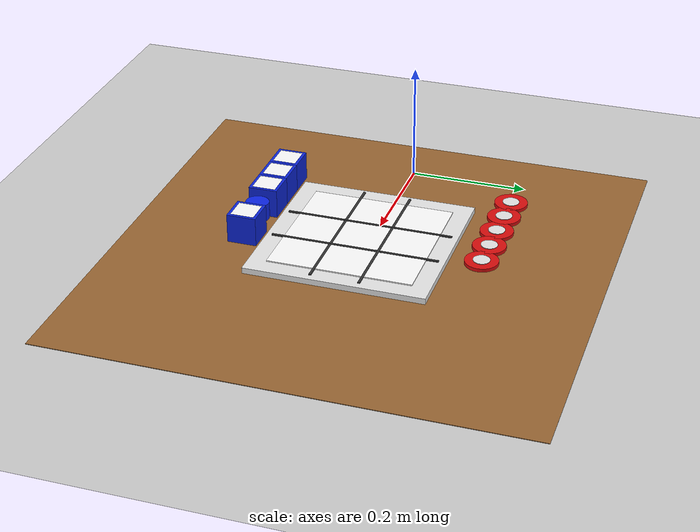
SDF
<?xml version="1.0" ?>
<sdf version="1.8">
  <world name="tictactoe_world">

    <plugin filename="gz-sim-physics-system" name="gz::sim::systems::Physics"></plugin>
    <plugin filename="gz-sim-user-commands-system" name="gz::sim::systems::UserCommands"></plugin>
    <plugin filename="gz-sim-scene-broadcaster-system" name="gz::sim::systems::SceneBroadcaster"></plugin>
    <plugin filename="gz-sim-contact-system" name="gz::sim::systems::Contact"></plugin>
    <plugin filename="gz-sim-sensors-system" name="gz::sim::systems::Sensors">
      <render_engine>ogre2</render_engine>
    </plugin>

    <gui fullscreen="false">
      <camera name="user_camera">
        <pose>0.80 0 0.45 0 0.6 3.14159</pose>
      </camera>
    </gui>

    <light name="sun" type="directional">
      <pose>0 0 10 0 0 0</pose>
      <cast_shadows>true</cast_shadows>
      <diffuse>0.8 0.8 0.8 1</diffuse>
      <specular>0.2 0.2 0.2 1</specular>
      <direction>-0.5 0.1 -0.9</direction>
    </light>

    <model name="ground_plane">
      <static>true</static>
      <link name="link">
        <collision name="collision">
          <geometry>
            <plane>
              <normal>0 0 1</normal>
              <size>100 100</size>
            </plane>
          </geometry>
        </collision>
        <visual name="visual">
          <geometry>
            <plane>
              <normal>0 0 1</normal>
              <size>100 100</size>
            </plane>
          </geometry>
          <material>
            <ambient>0.8 0.8 0.8 1</ambient>
            <diffuse>0.8 0.8 0.8 1</diffuse>
            <specular>0.8 0.8 0.8 1</specular>
          </material>
        </visual>
      </link>
    </model>

    <model name="tictactoe_table">
      <static>true</static>
      <pose>0.3 0.0 -0.025 0 0 0</pose>
      <link name="link">
        <collision name="collision">
          <geometry>
            <box>
              <size>0.8 0.8 0.05</size>
            </box>
          </geometry>
        </collision>
        <visual name="visual">
          <geometry>
            <box>
              <size>0.8 0.8 0.05</size>
            </box>
          </geometry>
          <material>
            <ambient>0.6 0.4 0.2 1</ambient>
            <diffuse>0.6 0.4 0.2 1</diffuse>
          </material>
        </visual>
      </link>
    </model>

    <model name="tictactoe_board">
      <static>true</static>
      <pose>0.3 0.0 0.03 0 0 0</pose>

      <link name="base_link">
        <collision name="collision">
          <geometry>
            <box>
              <size>0.3 0.3 0.01</size>
            </box>
          </geometry>
        </collision>
        <visual name="visual">
          <geometry>
            <box>
              <size>0.3 0.3 0.01</size>
            </box>
          </geometry>
          <material>
            <ambient>0.9 0.9 0.9 1</ambient>
            <diffuse>0.9 0.9 0.9 1</diffuse>
          </material>
        </visual>
      </link>

      <link name="cell_0_0">
        <pose>-0.08 0.08 0.006 0 0 0</pose>
        <visual name="visual">
          <geometry><box><size>0.08 0.08 0.002</size></box></geometry>
          <material>
            <ambient>1 1 1 1</ambient>
            <diffuse>1 1 1 1</diffuse>
            <pbr>
              <metal>
                <albedo_map>model://project2/models/textures/aruco_0.png</albedo_map>
                <roughness>1.0</roughness>
                <metalness>0.0</metalness>
              </metal>
            </pbr>
          </material>
        </visual>
      </link>

      <link name="cell_0_1">
        <pose>0 0.08 0.006 0 0 0</pose>
        <visual name="visual">
          <geometry><box><size>0.08 0.08 0.002</size></box></geometry>
          <material>
            <ambient>1 1 1 1</ambient>
            <diffuse>1 1 1 1</diffuse>
            <pbr>
              <metal>
                <albedo_map>model://project2/models/textures/aruco_1.png</albedo_map>
                <roughness>1.0</roughness>
                <metalness>0.0</metalness>
              </metal>
            </pbr>
          </material>
        </visual>
      </link>

      <link name="cell_0_2">
        <pose>0.08 0.08 0.006 0 0 0</pose>
        <visual name="visual">
          <geometry><box><size>0.08 0.08 0.002</size></box></geometry>
          <material>
            <ambient>1 1 1 1</ambient>
            <diffuse>1 1 1 1</diffuse>
            <pbr>
              <metal>
                <albedo_map>model://project2/models/textures/aruco_2.png</albedo_map>
                <roughness>1.0</roughness>
                <metalness>0.0</metalness>
              </metal>
            </pbr>
          </material>
        </visual>
      </link>

      <link name="cell_1_0">
        <pose>-0.08 0 0.006 0 0 0</pose>
        <visual name="visual">
          <geometry><box><size>0.08 0.08 0.002</size></box></geometry>
          <material>
            <ambient>1 1 1 1</ambient>
            <diffuse>1 1 1 1</diffuse>
            <pbr>
              <metal>
                <albedo_map>model://project2/models/textures/aruco_3.png</albedo_map>
                <roughness>1.0</roughness>
                <metalness>0.0</metalness>
              </metal>
            </pbr>
          </material>
        </visual>
      </link>

      <link name="cell_1_1">
        <pose>0 0 0.006 0 0 0</pose>
        <visual name="visual">
          <geometry><box><size>0.08 0.08 0.002</size></box></geometry>
          <material>
            <ambient>1 1 1 1</ambient>
            <diffuse>1 1 1 1</diffuse>
            <pbr>
              <metal>
                <albedo_map>model://project2/models/textures/aruco_4.png</albedo_map>
                <roughness>1.0</roughness>
                <metalness>0.0</metalness>
              </metal>
            </pbr>
          </material>
        </visual>
      </link>

      <link name="cell_1_2">
        <pose>0.08 0 0.006 0 0 0</pose>
        <visual name="visual">
          <geometry><box><size>0.08 0.08 0.002</size></box></geometry>
          <material>
            <ambient>1 1 1 1</ambient>
            <diffuse>1 1 1 1</diffuse>
            <pbr>
              <metal>
                <albedo_map>model://project2/models/textures/aruco_5.png</albedo_map>
                <roughness>1.0</roughness>
                <metalness>0.0</metalness>
              </metal>
            </pbr>
          </material>
        </visual>
      </link>

      <link name="cell_2_0">
        <pose>-0.08 -0.08 0.006 0 0 0</pose>
        <visual name="visual">
          <geometry><box><size>0.08 0.08 0.002</size></box></geometry>
          <material>
            <ambient>1 1 1 1</ambient>
            <diffuse>1 1 1 1</diffuse>
            <pbr>
              <metal>
                <albedo_map>model://project2/models/textures/aruco_6.png</albedo_map>
                <roughness>1.0</roughness>
                <metalness>0.0</metalness>
              </metal>
            </pbr>
          </material>
        </visual>
      </link>

      <link name="cell_2_1">
        <pose>0 -0.08 0.006 0 0 0</pose>
        <visual name="visual">
          <geometry><box><size>0.08 0.08 0.002</size></box></geometry>
          <material>
            <ambient>1 1 1 1</ambient>
            <diffuse>1 1 1 1</diffuse>
            <pbr>
              <metal>
                <albedo_map>model://project2/models/textures/aruco_7.png</albedo_map>
                <roughness>1.0</roughness>
                <metalness>0.0</metalness>
              </metal>
            </pbr>
          </material>
        </visual>
      </link>

      <link name="cell_2_2">
        <pose>0.08 -0.08 0.006 0 0 0</pose>
        <visual name="visual">
          <geometry><box><size>0.08 0.08 0.002</size></box></geometry>
          <material>
            <ambient>1 1 1 1</ambient>
            <diffuse>1 1 1 1</diffuse>
            <pbr>
              <metal>
                <albedo_map>model://project2/models/textures/aruco_8.png</albedo_map>
                <roughness>1.0</roughness>
                <metalness>0.0</metalness>
              </metal>
            </pbr>
          </material>
        </visual>
      </link>

      <link name="v_line_1">
        <pose>-0.04 0 0.007 0 0 0</pose>
        <visual name="visual">
          <geometry><box><size>0.004 0.28 0.002</size></box></geometry>
          <material><ambient>0.2 0.2 0.2 1</ambient><diffuse>0.2 0.2 0.2 1</diffuse></material>
        </visual>
      </link>

      <link name="v_line_2">
        <pose>0.04 0 0.007 0 0 0</pose>
        <visual name="visual">
          <geometry><box><size>0.004 0.28 0.002</size></box></geometry>
          <material><ambient>0.2 0.2 0.2 1</ambient><diffuse>0.2 0.2 0.2 1</diffuse></material>
        </visual>
      </link>

      <link name="h_line_1">
        <pose>0 -0.04 0.007 0 0 0</pose>
        <visual name="visual">
          <geometry><box><size>0.28 0.004 0.002</size></box></geometry>
          <material><ambient>0.2 0.2 0.2 1</ambient><diffuse>0.2 0.2 0.2 1</diffuse></material>
        </visual>
      </link>

      <link name="h_line_2">
        <pose>0 0.04 0.007 0 0 0</pose>
        <visual name="visual">
          <geometry><box><size>0.28 0.004 0.002</size></box></geometry>
          <material><ambient>0.2 0.2 0.2 1</ambient><diffuse>0.2 0.2 0.2 1</diffuse></material>
        </visual>
      </link>
    </model>

    <!-- Robot pieces are arranged along the near supply line. -->
    <include>
      <uri>model://aruco_cube_6</uri>
      <name>robot_cube_6</name>
      <pose>0.10 -0.20 0.025 0 0 0</pose>
    </include>
    <include>
      <uri>model://aruco_cube_7</uri>
      <name>robot_cube_7</name>
      <pose>0.15 -0.20 0.025 0 0 0</pose>
    </include>
    <include>
      <uri>model://aruco_cube_8</uri>
      <name>robot_cube_8</name>
      <pose>0.20 -0.20 0.025 0 0 0</pose>
    </include>
    <include>
      <uri>model://aruco_cube_9</uri>
      <name>robot_cube_9</name>
      <pose>0.25 -0.20 0.025 0 0 0</pose>
    </include>
    <include>
      <uri>model://aruco_cube_10</uri>
      <name>robot_cube_10</name>
      <pose>0.30 -0.20 0.025 0 0 0</pose>
    </include>

    <include>
      <uri>model://human_marker_o</uri>
      <name>human_marker_0</name>
      <pose>0.10 0.20 0.025 0 0 0</pose>
    </include>
    <include>
      <uri>model://human_marker_o</uri>
      <name>human_marker_1</name>
      <pose>0.15 0.20 0.025 0 0 0</pose>
    </include>
    <include>
      <uri>model://human_marker_o</uri>
      <name>human_marker_2</name>
      <pose>0.20 0.20 0.025 0 0 0</pose>
    </include>
    <include>
      <uri>model://human_marker_o</uri>
      <name>human_marker_3</name>
      <pose>0.25 0.20 0.025 0 0 0</pose>
    </include>
    <include>
      <uri>model://human_marker_o</uri>
      <name>human_marker_4</name>
      <pose>0.30 0.20 0.025 0 0 0</pose>
    </include>
  </world>
</sdf>

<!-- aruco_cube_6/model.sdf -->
<sdf version='1.10'>
  <model name='aruco_cube_6'>
    <link name="cube_link">
        <collision name="cube_collision">
            <geometry>
                <box>
                <size>0.05 0.05 0.05</size>
                </box>
            </geometry>

            <surface>
                <friction>
                <ode>
                    <mu>15</mu>
                    <mu2>15</mu2>
                </ode>
                </friction>
            </surface>
        </collision>

        <inertial>
            <mass>0.05</mass>
            <inertia>
                <ixx>0.000018</ixx>
                <iyy>0.000018</iyy>
                <izz>0.000018</izz>
                <ixy>0</ixy>
                <ixz>0</ixz>
                <iyz>0</iyz>
            </inertia>
        </inertial>

        <visual name="cube_visual">
            <geometry>
                <box>
                <size>0.05 0.05 0.05</size>
                </box>
            </geometry>
            <material>
                <ambient>0.05 0.15 0.85 1</ambient>
                <diffuse>0.05 0.15 0.85 1</diffuse>
                <specular>0.2 0.2 0.2 1</specular>
            </material>
        </visual>

        <visual name="aruco_top_visual">
            <pose>0 0 0.0251 0 0 0</pose>
            <geometry>
                <box>
                    <size>0.04 0.04 0.0001</size>
                </box>
            </geometry>
            <material>
                <ambient>1 1 1 1</ambient>
                <diffuse>1 1 1 1</diffuse>
                <pbr>
                    <metal>
                        <albedo_map>
                            material/textures/aruco_6.png

                        </albedo_map>
                        <roughness>1.0</roughness>
                        <metalness>0.0</metalness>
                    </metal>
                </pbr>
            </material>
        </visual>

    </link>
  </model>
</sdf>

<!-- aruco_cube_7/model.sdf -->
<sdf version='1.10'>
  <model name='aruco_cube_7'>
    <link name="cube_link">
        <collision name="cube_collision">
            <geometry>
                <box>
                <size>0.05 0.05 0.05</size>
                </box>
            </geometry>

            <surface>
                <friction>
                <ode>
                    <mu>15</mu>
                    <mu2>15</mu2>
                </ode>
                </friction>
            </surface>
        </collision>

        <inertial>
            <mass>0.05</mass>
            <inertia>
                <ixx>0.000018</ixx>
                <iyy>0.000018</iyy>
                <izz>0.000018</izz>
                <ixy>0</ixy>
                <ixz>0</ixz>
                <iyz>0</iyz>
            </inertia>
        </inertial>

        <visual name="cube_visual">
            <geometry>
                <box>
                <size>0.05 0.05 0.05</size>
                </box>
            </geometry>
            <material>
                <ambient>0.05 0.15 0.85 1</ambient>
                <diffuse>0.05 0.15 0.85 1</diffuse>
                <specular>0.2 0.2 0.2 1</specular>
            </material>
        </visual>

        <visual name="aruco_top_visual">
            <pose>0 0 0.0251 0 0 0</pose>
            <geometry>
                <box>
                    <size>0.04 0.04 0.0001</size>
                </box>
            </geometry>
            <material>
                <ambient>1 1 1 1</ambient>
                <diffuse>1 1 1 1</diffuse>
                <pbr>
                    <metal>
                        <albedo_map>
                            material/textures/aruco_7.png

                        </albedo_map>
                        <roughness>1.0</roughness>
                        <metalness>0.0</metalness>
                    </metal>
                </pbr>
            </material>
        </visual>

    </link>
  </model>
</sdf>

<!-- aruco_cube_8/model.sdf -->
<sdf version='1.10'>
  <model name='aruco_cube_8'>
    <link name="cube_link">
        <collision name="cube_collision">
            <geometry>
                <box>
                <size>0.05 0.05 0.05</size>
                </box>
            </geometry>

            <surface>
                <friction>
                <ode>
                    <mu>15</mu>
                    <mu2>15</mu2>
                </ode>
                </friction>
            </surface>
        </collision>

        <inertial>
            <mass>0.05</mass>
            <inertia>
                <ixx>0.000018</ixx>
                <iyy>0.000018</iyy>
                <izz>0.000018</izz>
                <ixy>0</ixy>
                <ixz>0</ixz>
                <iyz>0</iyz>
            </inertia>
        </inertial>

        <visual name="cube_visual">
            <geometry>
                <box>
                <size>0.05 0.05 0.05</size>
                </box>
            </geometry>
            <material>
                <ambient>0.05 0.15 0.85 1</ambient>
                <diffuse>0.05 0.15 0.85 1</diffuse>
                <specular>0.2 0.2 0.2 1</specular>
            </material>
        </visual>

        <visual name="aruco_top_visual">
            <pose>0 0 0.0251 0 0 0</pose>
            <geometry>
                <box>
                    <size>0.04 0.04 0.0001</size>
                </box>
            </geometry>
            <material>
                <ambient>1 1 1 1</ambient>
                <diffuse>1 1 1 1</diffuse>
                <pbr>
                    <metal>
                        <albedo_map>
                            material/textures/aruco_8.png

                        </albedo_map>
                        <roughness>1.0</roughness>
                        <metalness>0.0</metalness>
                    </metal>
                </pbr>
            </material>
        </visual>

    </link>
  </model>
</sdf>

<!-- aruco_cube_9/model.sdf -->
<sdf version='1.10'>
  <model name='aruco_cube_9'>
    <link name="cube_link">
        <collision name="cube_collision">
            <geometry>
                <cylinder>
                    <radius>0.02</radius>
                    <length>0.03</length>
                </cylinder>
            </geometry>
            <surface>
                <friction>
                <ode>
                    <mu>15</mu>
                    <mu2>15</mu2>
                </ode>
                </friction>
            </surface>
        </collision>

        <inertial>
            <mass>0.02</mass>
            <inertia>
                <ixx>0.000002</ixx>
                <iyy>0.000002</iyy>
                <izz>0.000004</izz>
                <ixy>0</ixy>
                <ixz>0</ixz>
                <iyz>0</iyz>
            </inertia>
        </inertial>

        <visual name="cube_visual">
            <geometry>
                <cylinder>
                    <radius>0.02</radius>
                    <length>0.03</length>
                </cylinder>
            </geometry>
            <material>
                <ambient>0.05 0.15 0.9 1</ambient>
                <diffuse>0.05 0.15 0.9 1</diffuse>
                <specular>0.2 0.2 0.2 1</specular>
            </material>
        </visual>
    </link>
  </model>
</sdf>

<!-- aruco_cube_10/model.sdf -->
<sdf version='1.10'>
  <model name='aruco_cube_10'>
    <link name="cube_link">
        <collision name="cube_collision">
            <geometry>
                <box>
                <size>0.05 0.05 0.05</size>
                </box>
            </geometry>

            <surface>
                <friction>
                <ode>
                    <mu>15</mu>
                    <mu2>15</mu2>
                </ode>
                </friction>
            </surface>
        </collision>

        <inertial>
            <mass>0.05</mass>
            <inertia>
                <ixx>0.000018</ixx>
                <iyy>0.000018</iyy>
                <izz>0.000018</izz>
                <ixy>0</ixy>
                <ixz>0</ixz>
                <iyz>0</iyz>
            </inertia>
        </inertial>

        <visual name="cube_visual">
            <geometry>
                <box>
                <size>0.05 0.05 0.05</size>
                </box>
            </geometry>
            <material>
                <ambient>0.05 0.15 0.85 1</ambient>
                <diffuse>0.05 0.15 0.85 1</diffuse>
                <specular>0.2 0.2 0.2 1</specular>
            </material>
        </visual>

        <visual name="aruco_top_visual">
            <pose>0 0 0.0251 0 0 0</pose>
            <geometry>
                <box>
                    <size>0.04 0.04 0.0001</size>
                </box>
            </geometry>
            <material>
                <ambient>1 1 1 1</ambient>
                <diffuse>1 1 1 1</diffuse>
                <pbr>
                    <metal>
                        <albedo_map>
                            material/textures/aruco_10.png

                        </albedo_map>
                        <roughness>1.0</roughness>
                        <metalness>0.0</metalness>
                    </metal>
                </pbr>
            </material>
        </visual>

    </link>
  </model>
</sdf>

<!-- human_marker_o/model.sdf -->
<sdf version='1.10'>
  <model name='human_marker_o'>
    <link name="marker_link">
        <collision name="marker_collision">
            <geometry>
                <cylinder>
                    <radius>0.028</radius>
                    <length>0.006</length>
                </cylinder>
            </geometry>
        </collision>

        <inertial>
            <mass>0.02</mass>
            <inertia>
                <ixx>0.000004</ixx>
                <iyy>0.000004</iyy>
                <izz>0.000008</izz>
                <ixy>0</ixy>
                <ixz>0</ixz>
                <iyz>0</iyz>
            </inertia>
        </inertial>

        <visual name="o_outer_visual">
            <geometry>
                <cylinder>
                    <radius>0.028</radius>
                    <length>0.006</length>
                </cylinder>
            </geometry>
            <material>
                <ambient>0.85 0.05 0.05 1</ambient>
                <diffuse>0.85 0.05 0.05 1</diffuse>
                <specular>0.2 0.2 0.2 1</specular>
            </material>
        </visual>

        <visual name="o_inner_visual">
            <geometry>
                <cylinder>
                    <radius>0.014</radius>
                    <length>0.008</length>
                </cylinder>
            </geometry>
            <material>
                <ambient>0.9 0.9 0.9 1</ambient>
                <diffuse>0.9 0.9 0.9 1</diffuse>
                <specular>0.1 0.1 0.1 1</specular>
            </material>
        </visual>
    </link>
  </model>
</sdf>
